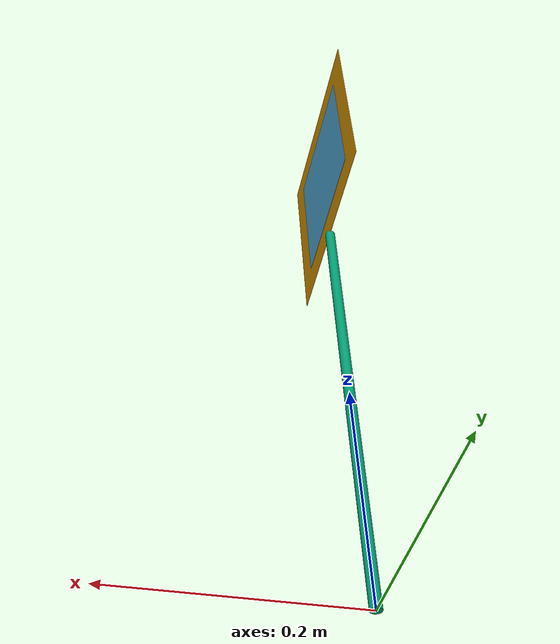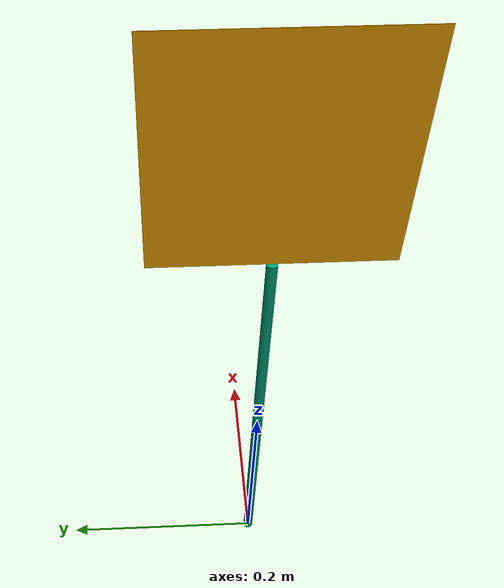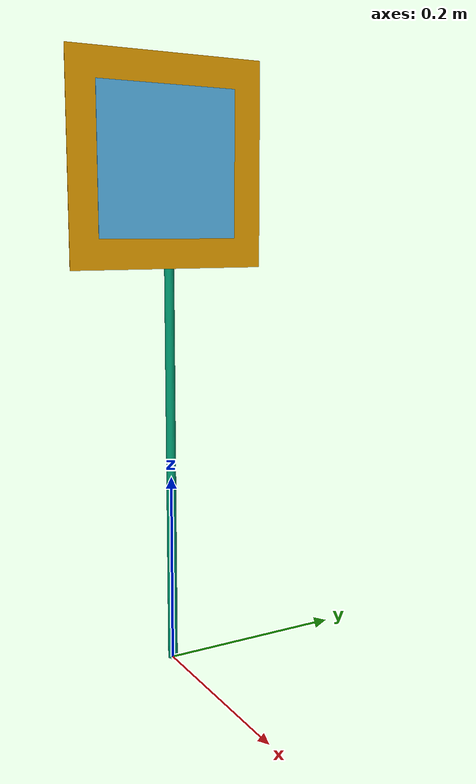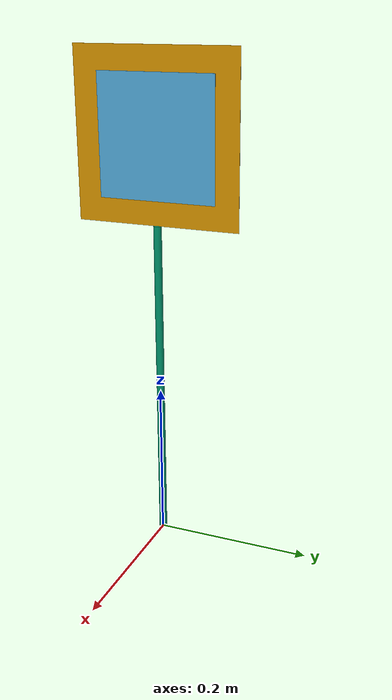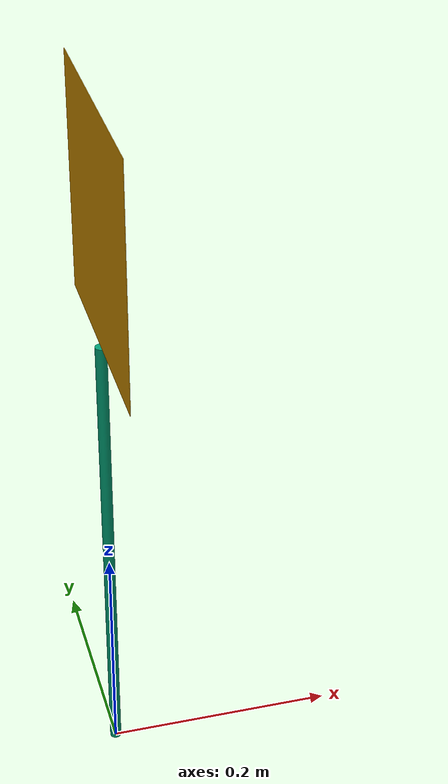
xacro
<?xml version="1.0" encoding="utf-8"?>
<robot xmlns:xacro="http://www.ros.org/wiki/xacro" name="marker">

  <xacro:arg name="sides" default="1"/>

  <xacro:if value="${$(arg sides) == 1}">
    <xacro:include filename="marker1.urdf.xacro"></xacro:include>
  </xacro:if>
  <xacro:if value="${$(arg sides) == 2}">
    <xacro:include filename="marker2.urdf.xacro"></xacro:include>
  </xacro:if>
  <xacro:if value="${$(arg sides) == 3}">
    <xacro:include filename="marker3.urdf.xacro"></xacro:include>
  </xacro:if>
  <xacro:if value="${$(arg sides) == 4}">
    <xacro:include filename="marker4.urdf.xacro"></xacro:include>
  </xacro:if>
</robot>

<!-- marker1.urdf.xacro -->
<robot xmlns:xacro="http://www.ros.org/wiki/xacro" name="marker">
  <xacro:property name="package" value="marker_description" />
  <xacro:arg name="name" default=""/>
  <xacro:property name="name" value="$(arg name)" />
  <xacro:arg name="family" default="artag"/>
  <xacro:property name="family" value="$(arg family)" />
  <xacro:arg name="id" default="0"/>
  <xacro:property name="id" value="${$(arg id)}" />
  <xacro:arg name="marker_size" default="0.15"/>
  <xacro:property name="marker_size" value="${$(arg marker_size)}" />
  <xacro:arg name="margin" default="0.03"/>
  <xacro:property name="margin" value="${$(arg margin)}" />
  <xacro:arg name="pole_height" default="0.417"/>
  <xacro:property name="pole_height" value="${$(arg pole_height)}" />
  <xacro:arg name="pole_radius" default="0.005"/>
  <xacro:property name="pole_radius" value="${$(arg pole_radius)}" />
  <xacro:if value="${name == ''}">
    <xacro:property name="name" value="${family}_${id}" />
  </xacro:if>

  <xacro:include filename="macros/marker.urdf.xacro" />
  <xacro:include filename="macros/pole.urdf.xacro" />
  <xacro:marker name='${name}_box'/>
  <xacro:pole height='${pole_height}' radius='${pole_radius}' name='${name}'/>

  <joint name="${name}_pole_joint" type="fixed">
    <parent link="${name}"/>
    <child link="${name}_box"/>
    <origin xyz="0 0 ${pole_height + marker_size/2 + margin}" rpy="0 0 0"/>
    <axis xyz="0 0 0"/>
  </joint>
</robot>

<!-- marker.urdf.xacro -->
<robot xmlns:xacro="http://wiki.ros.org/xacro">
<xacro:macro name="marker" params="marker_size:=^0.15 margin:=^0.03 name:=^'marker' family:=^'artag' id:=^'0'">
<xacro:property name="material" value="${family}_${id}" />
  <link name="${name}">
    <visual>
        <geometry>
          <box size="0.0005 ${marker_size + margin*2} ${marker_size + margin*2}" />
        </geometry>
        <origin xyz="0.00025 0 0" rpy="0 0 0"/>
    </visual>
    <collision>
        <geometry>
          <box size="0.0005 ${marker_size + margin*2} ${marker_size + margin*2}" />
        </geometry>
        <origin xyz="0.00025 0 0" rpy="0 0 0"/>
    </collision>
    <inertial>
      <mass value="1.0" />
      <inertia  ixx="1.0" ixy="0.0"  ixz="0.0"  iyy="1.0"  iyz="0.0"  izz="1.0" />
    </inertial>
  </link>
  <link name="${name}_material">
    <visual>
        <geometry>
          <box size="0.0005 ${marker_size} ${marker_size}" />
        </geometry>
    </visual>
    <collision>
        <geometry>
          <box size="0.0005 ${marker_size} ${marker_size}" />
        </geometry>
    </collision>
    <inertial>
      <mass value="1.0" />
      <inertia  ixx="1.0" ixy="0.0"  ixz="0.0"  iyy="1.0"  iyz="0.0"  izz="1.0" />
    </inertial>
  </link>
  <joint name="${name}_material_joint" type="continuous">
    <parent link="${name}"/>
    <child link="${name}_material"/>
    <origin xyz="0.00075 0 0" rpy="0 0 0"/>
    <axis xyz="0 0 0"/>
    <limit effort="0" velocity="0"/>
  </joint>
  <gazebo reference="${name}_material">
    <material>${material}</material>
  </gazebo>
  <gazebo reference="${name}">
    <material>
      <ambient>1 1 1 1</ambient>
      <diffuse>1 1 1 1</diffuse>
      <specular>0 0 0 0.0</specular>
      <emissive>0.0 0.0 0.0 0.0</emissive>
    </material>
  </gazebo>

  <gazebo>
    <static>true</static>
  </gazebo>
</xacro:macro>
</robot>

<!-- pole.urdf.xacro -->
<robot xmlns:xacro="http://wiki.ros.org/xacro">
<xacro:macro name="pole" params="height:=0.417 radius:=0.005 name:='marker'">
  <link name="${name}">
    <xacro:if value="${height != 0}">
      <visual>
        <geometry>
          <cylinder length="${height}" radius="${radius}" />
        </geometry>
        <origin xyz="0 0 ${height/2}" rpy="0 0 0"/>
      </visual>
      <collision>
        <geometry>
          <cylinder length="${height}" radius="${radius}" />
        </geometry>
        <origin xyz="0 0 ${height/2}" rpy="0 0 0"/>
      </collision>
      <inertial>
        <mass value="1.0" />
        <inertia  ixx="1.0" ixy="0.0"  ixz="0.0"  iyy="1.0"  iyz="0.0"  izz="1.0" />
      </inertial>
    </xacro:if>
  </link>
  <gazebo reference="${name}">
    <material>
      <ambient>0.6 0.3 0 1</ambient>
      <diffuse>0.6 0.3 0 1</diffuse>
      <specular>0 0 0 0.0</specular>
      <emissive>0.0 0.0 0.0 0.0</emissive>
    </material>
  </gazebo>
  <gazebo>
    <static>true</static>
  </gazebo>
</xacro:macro>
</robot>
